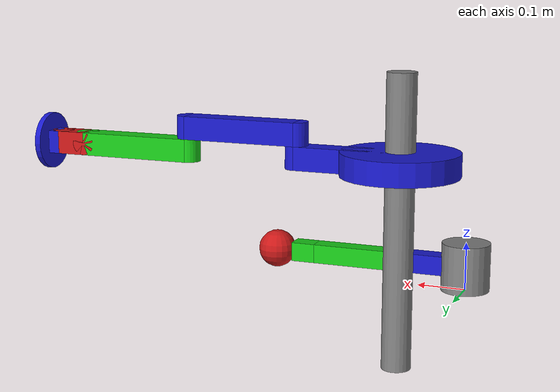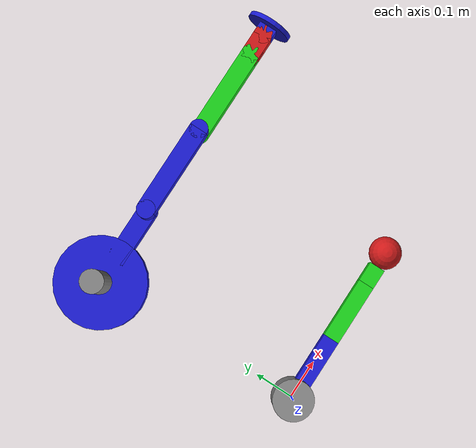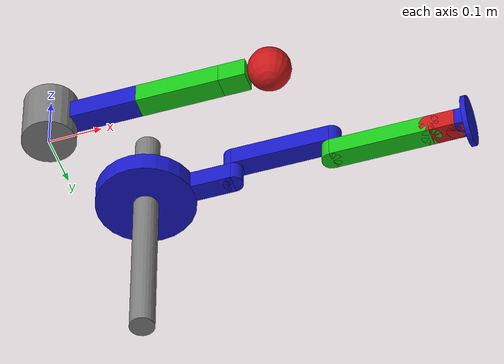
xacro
<?xml version="1.0"?>
<robot xmlns:xacro="http://www.ros.org/wiki/xacro" name="any_axis_arm">

	<xacro:property name="PI" value="3.141592653589793"/>
	<xacro:property name="degree_100" value="${100 * PI / 180}"/>
	<xacro:property name="degree_135" value="${135 * PI / 180}" />
	<xacro:property name="slave_z_minimum" value="0.05"/>
	<xacro:property name="slave_z_maximum" value="0.45"/>
	<xacro:property name="m_link_width" value="0.04"/>
	<xacro:property name="m_link1_length" value="0.17"/>
	<xacro:property name="m_link2_length" value="0.155"/>
	<xacro:property name="m_link3_length" value="0.05"/>
	<xacro:property name="end_effector_radius" value="0.04"/>
	<xacro:property name="s_link_z_length" value="0.5" />
	<xacro:property name="s_link1_length" value="0.2" />
	<xacro:property name="s_link2_length" value="0.2" />
	<xacro:property name="s_end_effector_length" value="0.05" />
	<xacro:property name="s_suction_cup_length" value="0.02"/>
	<xacro:property name="link_radius" value="0.02" />
	<xacro:property name="suction_cup_radius" value="0.05" />

	<material name="blue"><color rgba="0.1 0.1 0.8 1.0"/></material>
	<material name="green"><color rgba="0.1 0.8 0.1 1.0"/></material>
	<material name="grey"><color rgba="0.5 0.5 0.5 1.0"/></material>
	<material name="red"><color rgba="0.8 0.1 0.1 1.0"/></material>

	<ros2_control name="FakeSystem" type="system">
		<hardware>
			<plugin>fake_components/GenericSystem</plugin>
		</hardware>

		<joint name="m_joint_1">
			<command_interface name="position">
				<param name="min"> ${- degree_100}</param>
				<param name="max"> ${degree_100}</param>
			</command_interface>
			<state_interface name="position"/>
			<state_interface name="velocity"/>
		</joint>

		<joint name="m_joint_2">
			<command_interface name="position">
				<param name="min"> ${- degree_100}</param>
				<param name="max"> ${degree_100}</param>
			</command_interface>
			<state_interface name="position"/>
			<state_interface name="velocity"/>
		</joint>

		<joint name="m_joint_3">
			<command_interface name="position">
				<param name="min"> ${- degree_100}</param>
				<param name="max"> ${degree_100}</param>
			</command_interface>
			<state_interface name="position"/>
			<state_interface name="velocity"/>
		</joint>

		<joint name="m_joint_4">
			<command_interface name="position">
				<param name="min"> ${- degree_100}</param>
				<param name="max"> ${degree_100}</param>
			</command_interface>
			<state_interface name="position"/>
			<state_interface name="velocity"/>
		</joint>
		<joint name="s_joint_z">
			<command_interface name="position">
				<param name="min"> ${slave_z_minimum}</param>
				<param name="max"> ${slave_z_maximum}</param>
			</command_interface>
			<state_interface name="position"/>
			<state_interface name="velocity"/>
		</joint>
		<joint name="s_joint_1">
			<command_interface name="position">
				<param name="min"> ${- degree_135}</param>
				<param name="max"> ${degree_135}</param>
			</command_interface>
			<state_interface name="position"/>
			<state_interface name="velocity"/>
		</joint>
		<joint name="s_joint_2">
			<command_interface name="position">
				<param name="min"> ${- degree_135}</param>
				<param name="max"> ${degree_135}</param>
			</command_interface>
			<state_interface name="position"/>
			<state_interface name="velocity"/>
		</joint>
		<joint name="s_end_joint_y">
			<command_interface name="position">
				<param name="min"> ${- degree_135}</param>
				<param name="max"> ${degree_135}</param>
			</command_interface>
			<state_interface name="position"/>
			<state_interface name="velocity"/>
		</joint>
		<joint name="s_end_joint_z">
			<command_interface name="position">
				<param name="min"> ${- degree_135}</param>
				<param name="max"> ${degree_135}</param>
			</command_interface>
			<state_interface name="position"/>
			<state_interface name="velocity"/>
		</joint>
	</ros2_control>

	<gazebo>
		<plugin name="fake_components" filename="libgazebo_ros2_control.so">
			<parameters>$(find complete_robot)/config/controllers.yaml</parameters>
		</plugin>
	</gazebo>

<!-- ㅡㅡㅡㅡㅡㅡㅡㅡㅡㅡㅡㅡㅡㅡㅡㅡㅡㅡㅡㅡㅡㅡㅡㅡㅡㅡㅡㅡㅡㅡㅡㅡㅡㅡㅡㅡㅡㅡㅡㅡㅡㅡㅡㅡㅡㅡㅡㅡㅡ -->

	<link name="world" />

	<link name="base_link"><!--                 master base link 설정                -->
		<visual>
			<geometry>
				<cylinder radius="0.05" length="0.1"/>
			</geometry>
			<material name="grey"/>
		</visual>
        <collision>
        	<geometry>
        		<cylinder radius="0.05" length="0.1"/>
        	</geometry>
        </collision>
        <inertial>
        	<mass value="1"/>
        	<inertia ixx="0.001" ixy="0" ixz="0"
        		iyy="0.001" iyz="0" izz="0.001"/>
        </inertial>
    </link>

    <joint name="world_to_m_base" type="fixed"><!--   world ro master base joint 설정  -->
    	<parent link="world"/>
    	<child link="base_link"/>
    	<origin xyz="0 0 0.05" rpy="0 0 0"/>
    </joint>

    <link name="m_link_1"><!--                   master link 1 설정                    -->
        <visual>
        	<origin xyz="${m_link1_length/2} 0 0"/>
        	<geometry>
        		<box size="${m_link1_length} ${m_link_width} 0.04"/>
        	</geometry>
        	<material name="blue"/>
        </visual>
        <collision>
        	<origin xyz="${m_link1_length/2} 0 0"/>
        	<geometry>
        		<box size="${m_link1_length} ${m_link_width} 0.04"/>
        	</geometry>
        </collision>
        <inertial>
        	<mass value="0.2"/>
        	<origin xyz="${m_link1_length/2} 0 0" rpy="0 0 0"/>
        	<inertia ixx="0.000054" ixy="0.0" ixz="0.0"
        		iyy="0.000694" iyz="0.0" izz="0.000694"/>
        </inertial>
    </link>

    <joint name="m_joint_1" type="revolute"><!--         master jonit 1 설정          -->
        <parent link="base_link" />
        <child link="m_link_1" />
        <origin xyz="0 0 0" rpy="0 0 0"/>
        <axis xyz="0 0 1"/>
        <limit lower="${-degree_100}" upper="${degree_100}" effort="1.5" velocity="6.38791"/>
    </joint>

    <link name="m_link_2"><!--                    master link 2 설정                  -->
        <visual>
        	<origin xyz="${m_link2_length/2} 0 0"/>
        	<geometry>
        		<box size="${m_link2_length} ${m_link_width} 0.04"/>
        	</geometry>
        	<material name="green"/>
        </visual>
        <collision>
        	<origin xyz="${m_link2_length/2} 0 0"/>
        	<geometry>
        		<box size="${m_link2_length} ${m_link_width} 0.04"/>
        	</geometry>
        </collision>
        <inertial>
        	<mass value="0.2"/>
        	<origin xyz="${m_link2_length/2} 0 0" rpy="0 0 0"/>
        	<inertia ixx="0.000054" ixy="0.0" ixz="0.0"
        		iyy="0.000694" iyz="0.0" izz="0.000694"/>
        </inertial>
    </link>

    <joint name="m_joint_2" type="revolute">
        <parent link="m_link_1" />
        <child link="m_link_2" />
        <origin xyz="${m_link1_length} 0 0" rpy="0 0 0"/>
        <axis xyz="0 1 0"/>
        <limit lower="${-degree_100}" upper="${degree_100}" effort="1.5" velocity="6.38791"/>
    </joint>

	<link name="m_link_3">
		<visual>
			<origin xyz="${m_link3_length/2} 0 0"/>
			<geometry>
				<box size="${m_link3_length} ${m_link_width} 0.04"/>
			</geometry>
			<material name="green"/>
		</visual>
		<collision>
			<origin xyz="${m_link3_length/2} 0 0"/>
			<geometry>
				<box size="${m_link3_length} ${m_link_width} 0.04"/>
			</geometry>
		</collision>
		<inertial>
			<mass value="0.1"/>
			<origin xyz="${m_link3_length/2} 0 0" rpy="0 0 0"/>
			<inertia ixx="0.0001" ixy="0.0" ixz="0.0"
				iyy="0.0001" iyz="0.0" izz="0.0001"/>
		</inertial>
	</link>

	<joint name="m_joint_3" type="revolute">
		<parent link="m_link_2" />
		<child link="m_link_3" />
		<origin xyz="${m_link2_length} 0 0" rpy="0 0 0"/>
		<axis xyz="0 1 0"/>
		<limit lower="${-degree_100}" upper="${degree_100}" effort="1.5" velocity="6.38791"/>
	</joint>

	<link name="m_end_effector">
		<visual>
			<origin xyz="${end_effector_radius} 0 0" />
			<geometry>
				<sphere radius="${end_effector_radius}" />
			</geometry>
			<material name="red"/>
		</visual>
		<collision>
			<origin xyz="${end_effector_radius} 0 0" rpy="0 0 0" />
			<geometry>
				<sphere radius="${end_effector_radius}" />
			</geometry>
		</collision>
		<inertial>
			<mass value="0.01" />
			<origin xyz="0 0 0" rpy="0 0 0" />
			<inertia ixx="0.0001" ixy="0" ixz="0"
				iyy="0.0001" iyz="0" izz="0.0001" />
		</inertial>
	</link>

	<joint name="m_joint_4" type="revolute">
		<parent link="m_link_3" />
		<child link="m_end_effector" />
		<origin xyz="${m_link3_length} 0 0" rpy="0 0 0" />
		<axis xyz="0 0 1" />
		<limit lower="${-degree_100}" upper="${degree_100}" effort="1.5" velocity="6.38791"/>
	</joint>

<!-- ㅡㅡㅡㅡㅡㅡㅡㅡㅡㅡㅡㅡㅡㅡㅡㅡㅡㅡㅡㅡㅡㅡㅡㅡㅡㅡㅡㅡㅡㅡㅡㅡㅡㅡㅡㅡㅡㅡㅡㅡㅡㅡㅡㅡㅡㅡㅡㅡㅡㅡㅡㅡㅡㅡㅡ -->

	<link name="s_pole_link">
		<visual>
			<origin xyz="0 0 0" rpy="0 0 0"/>
			<geometry>
				<cylinder radius="0.025" length="${s_link_z_length}"/>
			</geometry>
			<material name="grey"/>
		</visual>
        <collision>
        	<origin xyz="0 0 0" rpy="0 0 0"/>
        	<geometry>
        		<cylinder radius="0.02" length="${s_link_z_length}"/>
        	</geometry>
        </collision>
        <inertial>
        	<mass value="1"/>
        	<inertia ixx="0.001" ixy="0" ixz="0" iyy="0.001" iyz="0" izz="0.001"/>
        </inertial>
    </link>

    <joint name="world_to_s_pole" type="fixed">
    	<parent link="world"/>
    	<child link="s_pole_link"/>
    	<origin xyz="0 0.5 0.25" rpy="0 0 0"/>
    </joint>

    <link name='s_slider_link'>
    	<visual>
    		<origin xyz="0 0 0" rpy="0 0 0"/>
    		<geometry>
    			<cylinder radius="0.1" length="0.04"/>
    		</geometry>
    		<material name="blue"/>
    	</visual>
    	<collision>
    		<origin xyz="0 0 0" rpy="0 0 0"/>
    		<geometry>
    			<cylinder radius="0.1" length="0.04"/>
    		</geometry>
    	</collision>
    	<inertial>
        	<mass value="1"/>
        	<inertia ixx="0.001" ixy="0" ixz="0" iyy="0.001" iyz="0" izz="0.001"/>
    	</inertial>
    </link>

    <joint name="s_joint_z" type="prismatic">
    	<parent link="s_pole_link"/>
    	<child link="s_slider_link"/>
    	<origin xyz="0 0 -0.15" rpy="0 0 0"/>
    	<axis xyz="0 0 1"/>
    	<limit lower="${slave_z_minimum}" upper="${slave_z_maximum}" effort="100" velocity="0.1"/>
    </joint>

    <link name="s_base_link">
    	<visual>
    		<origin xyz="0.09 0 0"/>
    		<geometry>
    			<box size="0.18 0.04 0.04"/>
    		</geometry>
    		<material name="blue"/>
    	</visual>
    	<visual>
    		<origin xyz="0.18 0 0"/>
    		<geometry>
    			<cylinder radius="0.02" length="0.04"/>
    		</geometry>
    		<material name="blue"/>
    	</visual>
        <collision>
        	<origin xyz="0.14 0 0" rpy="0 0 0"/>
        	<geometry>
        		<box size="0.08 0.04 0.04"/>
        	</geometry>
        </collision>
        <collision>
    		<origin xyz="0.18 0 0"/>
    		<geometry>
    			<cylinder radius="0.02" length="0.04"/>
    		</geometry>
    		<material name="blue"/>
    	</collision>
        <inertial>
        	<mass value="0.1"/>
        	<inertia ixx="0.0001" ixy="0" ixz="0" iyy="0.0001" iyz="0" izz="0.0001"/>
        </inertial>
    </link>

    <joint name="s_slider_to_base" type="fixed">
    	<parent link="s_slider_link"/>
    	<child link="s_base_link"/>
    	<origin xyz="0 0 0" rpy="0 0 0"/>
    </joint>

	<link name="s_link_1">
        <visual>
        	<origin xyz="${s_link1_length/2} 0 0"/>
        	<geometry>
        		<box size="${s_link1_length} 0.04 0.04"/>
        	</geometry>
        	<material name="blue"/>
        </visual>
        <visual> <!-- 둥근 부분 -->
    		<origin xyz="0 0 0"/>
    		<geometry>
    			<cylinder radius="0.02" length="0.04"/>
    		</geometry>
    		<material name="blue"/>
    	</visual>
        <visual>
    		<origin xyz="${s_link1_length} 0 0"/>
    		<geometry>
    			<cylinder radius="0.02" length="0.04"/>
    		</geometry>
    		<material name="blue"/>
    	</visual>
        <collision>
        	<origin xyz="${s_link1_length/2} 0 0"/>
        	<geometry>
        		<box size="${s_link1_length} 0.04 0.04"/>
        	</geometry>
        </collision>
        <collision> <!-- 둥근 부분 -->
    		<origin xyz="0 0 0"/>
    		<geometry>
    			<cylinder radius="0.02" length="0.04"/>
    		</geometry>
    		<material name="blue"/>
    	</collision>
        <collision>
    		<origin xyz="${s_link1_length} 0 0"/>
    		<geometry>
    			<cylinder radius="0.02" length="0.04"/>
    		</geometry>
    		<material name="blue"/>
    	</collision>
        <inertial>
        	<mass value="0.2"/>
        	<origin xyz="${s_link1_length/2} 0 0" rpy="0 0 0"/>
        	<inertia ixx="0.000054" ixy="0.0" ixz="0.0" iyy="0.000694" iyz="0.0" izz="0.000694"/>
        </inertial>
    </link>

    <joint name="s_joint_1" type="revolute">
        <parent link="s_base_link" />
        <child link="s_link_1" />
        <origin xyz="${s_link1_length/2+0.1-0.02} 0 0.04" rpy="0 0 0"/>
        <axis xyz="0 0 1"/>
        <limit lower="${-degree_135}" upper="${degree_135}" effort="1.5" velocity="6.38791"/>
    </joint>

<!--                 link_2 물리량 설정                  -->

    <link name="s_link_2">
        <visual>
        	<origin xyz="${s_link2_length/2} 0 0"/>
        	<geometry>
        		<box size="${s_link2_length} 0.04 0.04"/>
        	</geometry>
        	<material name="green"/>
        </visual>
        <visual> <!-- 둥근 부분 -->
    		<origin xyz="0 0 0"/>
    		<geometry>
    			<cylinder radius="0.02" length="0.04"/>
    		</geometry>
    		<material name="green"/>
    	</visual>
        <visual>
    		<origin xyz="${s_link2_length} 0 0"/>
    		<geometry>
    			<cylinder radius="0.02" length="0.04"/>
    		</geometry>
    		<material name="green"/>
    	</visual>
        <collision>
        	<origin xyz="${s_link2_length/2} 0 0"/>
        	<geometry>
        		<box size="${s_link2_length} 0.04 0.04"/>
        	</geometry>
        </collision>
        <collision> <!-- 둥근 부분 -->
    		<origin xyz="0 0 0.08"/>
    		<geometry>
    			<cylinder radius="0.02" length="0.04"/>
    		</geometry>
    		<material name="green"/>
    	</collision>
        <collision>
    		<origin xyz="${s_link2_length} 0 0"/>
    		<geometry>
    			<cylinder radius="0.02" length="0.04"/>
    		</geometry>
    		<material name="green"/>
    	</collision>
        <inertial>
        	<mass value="0.2"/>
        	<origin xyz="${s_link2_length/2} 0 0" rpy="0 0 0"/>
        	<inertia ixx="0.000054" ixy="0.0" ixz="0.0" iyy="0.000694" iyz="0.0" izz="0.000694"/>
        </inertial>
    </link>

    <joint name="s_joint_2" type="revolute">
        <parent link="s_link_1" />
        <child link="s_link_2" />
        <origin xyz="${s_link1_length/2+s_link1_length/2} 0 -0.04" rpy="0 0 0"/>
        <axis xyz="0 0 1"/>
        <limit lower="${-degree_135}" upper="${degree_135}" effort="1.5" velocity="6.38791"/>
    </joint>

    <link name="s_end_effector">

    	<visual>
        	<origin xyz="${s_end_effector_length/2} 0 0"/>
        	<geometry>
        		<box size="${s_end_effector_length} 0.04 0.04"/>
        	</geometry>
        	<material name="red"/>
        </visual>
        <visual> <!-- 둥근 부분 -->
    		<origin xyz="0 0 0"  rpy="1.5708 0 0" />
    		<geometry>
    			<cylinder radius="0.02" length="0.04"/>
    		</geometry>
    		<material name="red"/>
    	</visual>
        <visual>
    		<origin xyz="${s_end_effector_length} 0 0" rpy="0 0 0" />
    		<geometry>
    			<cylinder radius="0.02" length="0.04"/>
    		</geometry>
    		<material name="red"/>
    	</visual>
        <collision>
        	<origin xyz="${s_end_effector_length/2} 0 0"/>
        	<geometry>
        		<box size="${s_end_effector_length} 0.04 0.04" />
        	</geometry>
        </collision>
        <collision> <!-- 둥근 부분 -->
    		<origin xyz="0 0 0" rpy="1.5708 0 0" />
    		<geometry>
    			<cylinder radius="0.02" length="0.04"/>
    		</geometry>
    		<material name="red"/>
    	</collision>
        <collision>
    		<origin xyz="${s_end_effector_length} 0 0" rpy="0 0 0" />
    		<geometry>
    			<cylinder radius="0.02" length="0.04"/>
    		</geometry>
    		<material name="blue"/>
    	</collision>
        <inertial>
        	<mass value="0.2"/>
        	<origin xyz="${s_end_effector_length/2} 0 0" rpy="1.5708 0 0"/>
        	<inertia ixx="0.000054" ixy="0.0" ixz="0.0" iyy="0.000694" iyz="0.0" izz="0.000694"/>
        </inertial>
    </link>

    <joint name="s_end_joint_y" type="revolute">
       	<parent link="s_link_2" />
       	<child link="s_end_effector" />
       	<origin xyz="${s_link2_length} 0 0" rpy="0 0 0"/>
       	<axis xyz="0 1 0"/>
       	<limit lower="${-degree_135}" upper="${degree_135}" effort="1.5" velocity="6.38791"/>
    </joint>

    <joint name="s_end_joint_z" type="revolute">
       	<parent link="s_end_effector" />
       	<child link="s_suction_cup" />
       	<origin xyz="${s_end_effector_length} 0 0" rpy="0 0 0"/>
       	<axis xyz="0 0 1"/>
       	<limit lower="${-degree_135}" upper="${degree_135}" effort="1.5" velocity="6.38791"/>
    </joint>

    <link name="s_suction_cup">
    	<visual>
    		<origin xyz="${s_suction_cup_length/2} 0 0"/>
        	<geometry>
        		<box size="0.02 0.04 0.04"/>
        	</geometry>
        	<material name="blue"/>
        </visual>
       	<visual> <!-- 둥근 부분 -->
   			<origin xyz="0 0 0"/>
   			<geometry>
   				<cylinder radius="0.02" length="0.04" rpy="1 0 0" />
   			</geometry>
   			<material name="blue"/>
   		</visual>
       	<visual>
   			<origin xyz="${s_end_effector_length/2} 0 0" rpy="0 1.5708 0"/>
   			<geometry>
   				<cylinder radius="0.05" length="0.01"/>
   			</geometry>
   			<material name="blue"/>
   		</visual>

       	<collision>
       		<origin xyz="${s_suction_cup_length/2} 0 0"/>
       		<geometry>
       			<box size="0.02 0.04 0.04"/>
       		</geometry>
       	</collision>
       	<collision> <!-- 둥근 부분 -->
   			<origin xyz="0 0 0"/>
    		<geometry>
   				<cylinder radius="0.02" length="0.04"/>
   			</geometry>
   			<material name="blue"/>
   		</collision>
       	<collision>
   			<origin xyz="${s_end_effector_length} 0 0" rpy="0 1.5708 0"/>
   			<geometry>
   				<cylinder radius="0.02" length="0.04"/>
   			</geometry>
   			<material name="blue"/>
   		</collision>

       	<inertial>
       		<mass value="0.2"/>
       		<origin xyz="${s_end_effector_length/2} 0 0" rpy="0 0 0"/>
       		<inertia ixx="0.000054" ixy="0.0" ixz="0.0" iyy="0.000694" iyz="0.0" izz="0.000694"/>
       	</inertial>
    </link>
</robot>
